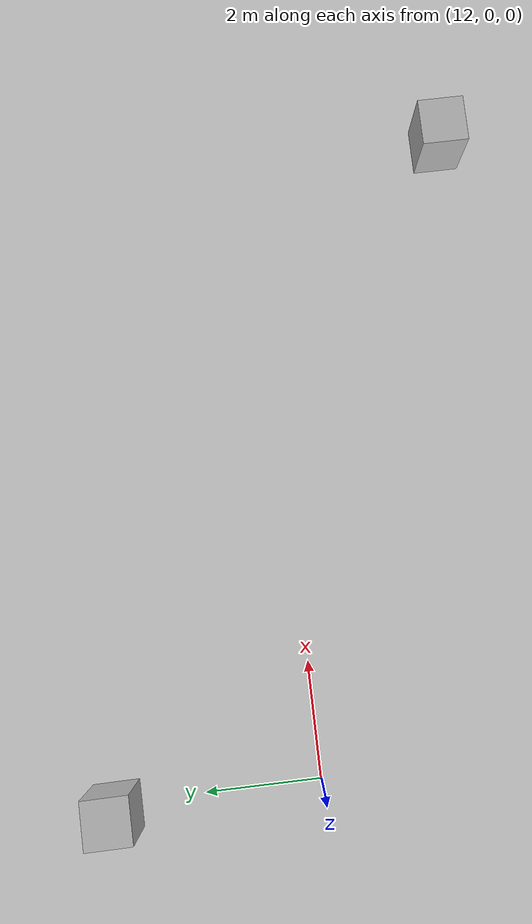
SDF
<?xml version="1.0"?>
<sdf version="1.6">
  <world name="v2-04g-p2-q1-qual-ackermann-circle-v125-s5333">
    <gravity>0 0 -9.81</gravity>
    <physics name="v2_deterministic" type="ode">
      <max_step_size>0.002</max_step_size>
      <real_time_update_rate>500</real_time_update_rate>
    </physics>
    <include>
      <uri>model://sun</uri>
    </include>
    <include>
      <uri>model://ground_plane</uri>
    </include>
    <model name="cruise-left">
      <static>true</static>
      <pose>11.963923881 3.509868669 0.600000000 0 0 0.009172141</pose>
      <link name="link">
        <collision name="collision">
          <geometry>
            <box>
              <size>0.800000 0.800000 1.200000</size>
            </box>
          </geometry>
        </collision>
        <visual name="visual">
          <geometry>
            <box>
              <size>0.800000 0.800000 1.200000</size>
            </box>
          </geometry>
        </visual>
      </link>
    </model>
    <model name="cruise-right">
      <static>true</static>
      <pose>23.037031181 -3.444488277 0.600000000 0 0 -0.003495466</pose>
      <link name="link">
        <collision name="collision">
          <geometry>
            <box>
              <size>0.800000 0.800000 1.200000</size>
            </box>
          </geometry>
        </collision>
        <visual name="visual">
          <geometry>
            <box>
              <size>0.800000 0.800000 1.200000</size>
            </box>
          </geometry>
        </visual>
      </link>
    </model>
  </world>
</sdf>
